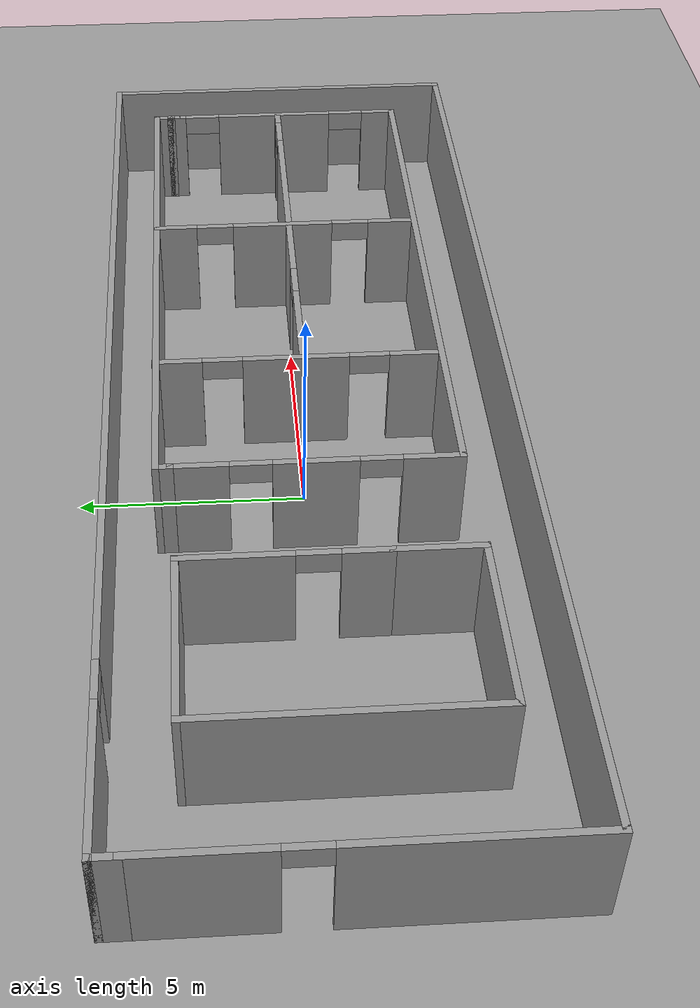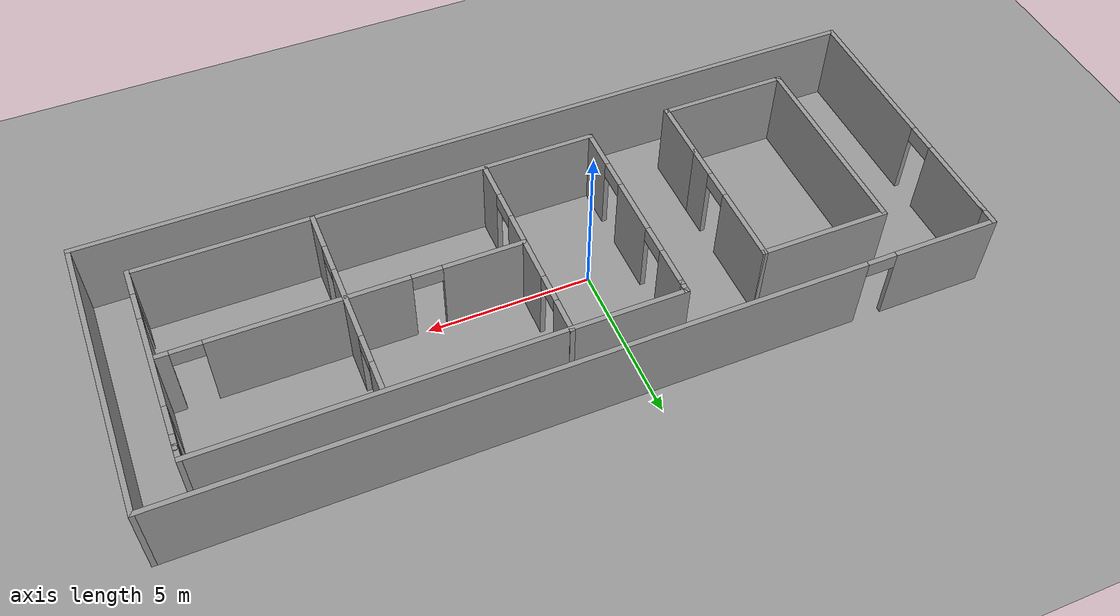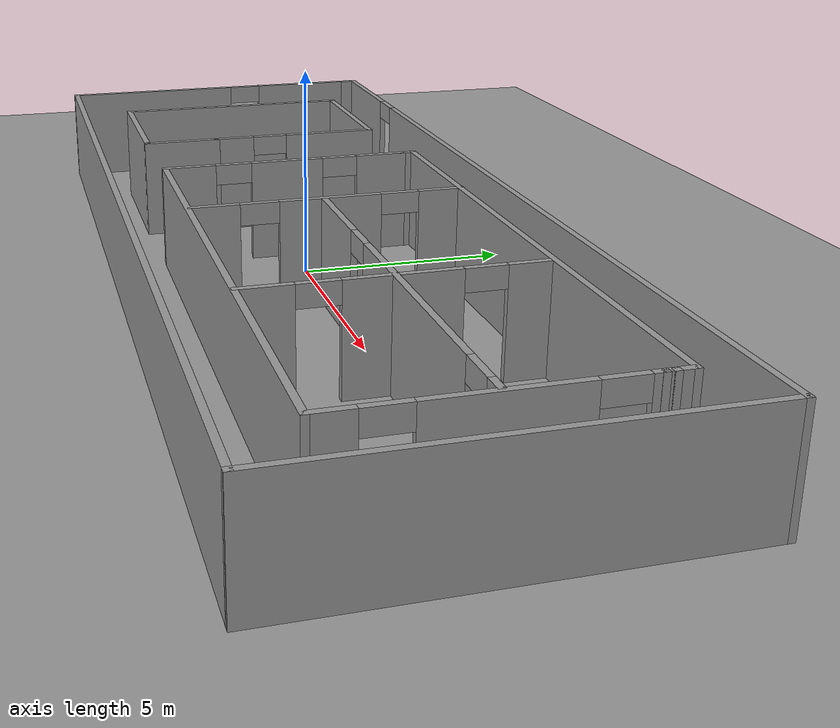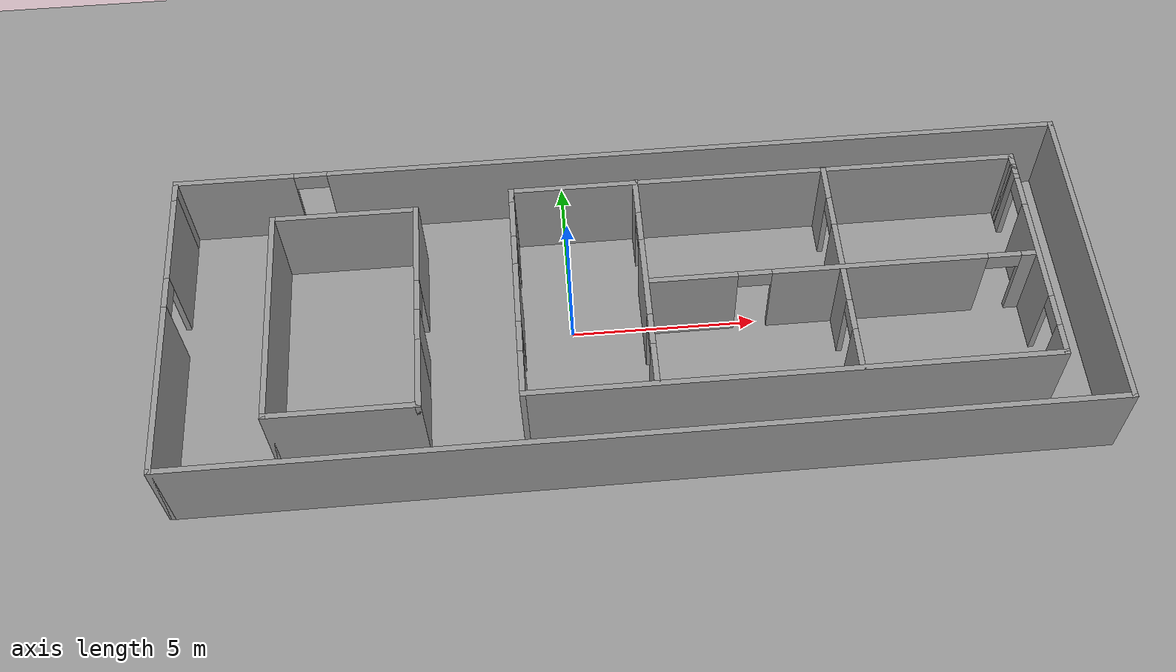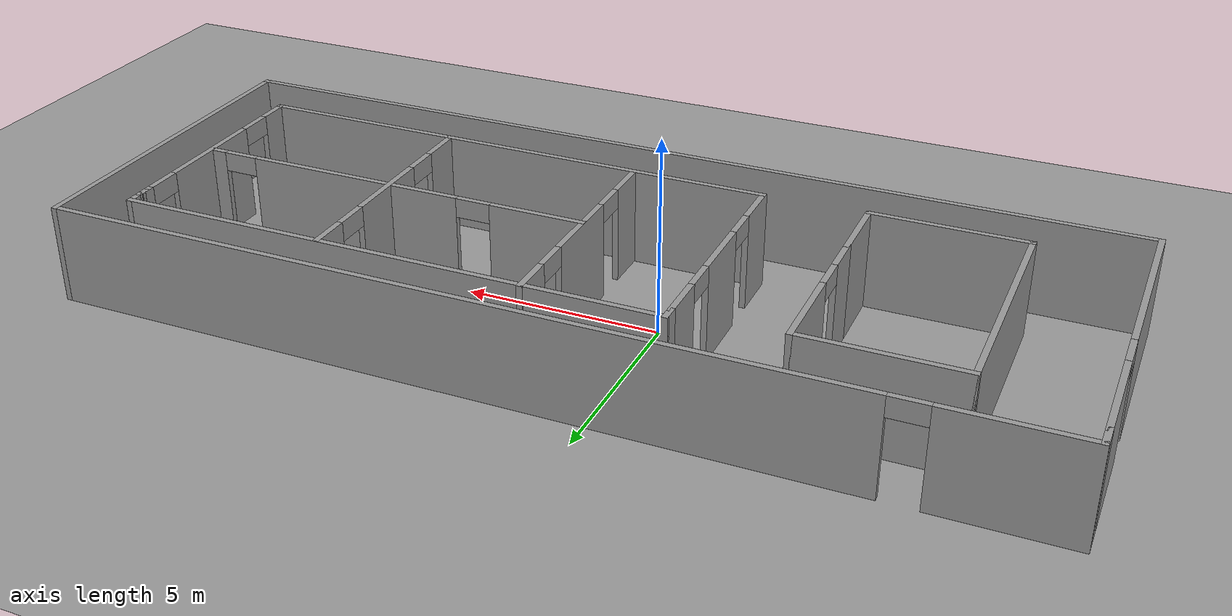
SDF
<sdf version="1.7">
 <world name="default">
  <light name="sun" type="directional">
   <pose>0 0 10 0 -0 0</pose>
   <diffuse>0.8 0.8 0.8 1</diffuse>
   <specular>0.2 0.2 0.2 1</specular>
   <attenuation>
    <range>1000</range>
    <constant>0.9</constant>
    <linear>0.01</linear>
    <quadratic>0.001</quadratic>
   </attenuation>
   <direction>0.5 0.1 -0.9</direction>
   <spot><inner_angle>0</inner_angle><outer_angle>0</outer_angle><falloff>0</falloff></spot>
  </light>
  <scene><ambient>0.4 0.4 0.4 1</ambient><background>0.7 0.7 0.7 1</background><shadows>1</shadows></scene>
  <physics name="default_physics" default="0" type="ode">
   <max_step_size>0.01</max_step_size>
   <real_time_factor>1</real_time_factor>
   <real_time_update_rate>100</real_time_update_rate>
  </physics>
  <model name="ground_plane_0">
   <static>1</static>
   <link name="link">
    <collision name="collision">
     <geometry><plane><normal>0 0 1</normal><size>100 100</size></plane></geometry>
     <surface><friction><ode><mu>100</mu><mu2>50</mu2></ode></friction></surface>
    </collision>
    <visual name="visual">
     <cast_shadows>0</cast_shadows>
     <geometry><plane><normal>0 0 1</normal><size>100 100</size></plane></geometry>
     <material>
      <script><uri>file://media/materials/scripts/gazebo.material</uri><name>Gazebo/Grey</name></script>
     </material>
    </visual>
    <velocity_decay><linear>0</linear><angular>0</angular></velocity_decay>
   </link>
   <pose>0.497681 0 0 0 -0 0</pose>
  </model>
  <gravity>0 0 -9.8</gravity>
  <magnetic_field>6e-06 2.3e-05 -4.2e-05</magnetic_field>
  <atmosphere type="adiabatic"/>
  <spherical_coordinates>
   <surface_model>EARTH_WGS84</surface_model>
   <latitude_deg>0</latitude_deg>
   <longitude_deg>0</longitude_deg>
   <elevation>0</elevation>
   <heading_deg>0</heading_deg>
  </spherical_coordinates>
  <model name="myCustomRoom">
   <pose>1.63945 -0.167842 0 0 -0 0</pose>
   <link name="Wall_0">
    <pose>-12.175 -0.25 0 0 0 -1.5708</pose>
    <visual name="Wall_0_Visual_0">
     <pose>-2.8875 0 1.25 0 -0 0</pose>
     <geometry><box><size>2.725 0.15 2.5</size></box></geometry>
     <material>
      <script><uri>file://media/materials/scripts/gazebo.material</uri><name>Gazebo/Grey</name></script>
      <ambient>1 1 1 1</ambient>
     </material>
    </visual>
    <collision name="Wall_0_Collision_0">
     <geometry><box><size>2.725 0.15 2.5</size></box></geometry>
     <pose>-2.8875 0 1.25 0 -0 0</pose>
    </collision>
    <visual name="Wall_0_Visual_1">
     <pose>1.8125 0 1.25 0 -0 0</pose>
     <geometry><box><size>4.875 0.15 2.5</size></box></geometry>
     <material>
      <script><uri>file://media/materials/scripts/gazebo.material</uri><name>Gazebo/Grey</name></script>
      <ambient>1 1 1 1</ambient>
     </material>
    </visual>
    <collision name="Wall_0_Collision_1">
     <geometry><box><size>4.875 0.15 2.5</size></box></geometry>
     <pose>1.8125 0 1.25 0 -0 0</pose>
    </collision>
    <visual name="Wall_0_Visual_2">
     <pose>-1.075 0 2.25 0 -0 0</pose>
     <geometry><box><size>0.9 0.15 0.5</size></box></geometry>
     <material>
      <script><uri>file://media/materials/scripts/gazebo.material</uri><name>Gazebo/Grey</name></script>
      <ambient>1 1 1 1</ambient>
     </material>
    </visual>
    <collision name="Wall_0_Collision_2">
     <geometry><box><size>0.9 0.15 0.5</size></box></geometry>
     <pose>-1.075 0 2.25 0 -0 0</pose>
    </collision>
   </link>
   <link name="Wall_1">
    <collision name="Wall_1_Collision">
     <geometry><box><size>24.5 0.15 2.5</size></box></geometry>
     <pose>0 0 1.25 0 -0 0</pose>
    </collision>
    <visual name="Wall_1_Visual">
     <pose>0 0 1.25 0 -0 0</pose>
     <geometry><box><size>24.5 0.15 2.5</size></box></geometry>
     <material>
      <script><uri>file://media/materials/scripts/gazebo.material</uri><name>Gazebo/Grey</name></script>
      <ambient>1 1 1 1</ambient>
     </material>
    </visual>
    <pose>0 -4.425 0 0 -0 0</pose>
   </link>
   <link name="Wall_10">
    <collision name="Wall_10_Collision">
     <geometry><box><size>4 0.15 2.5</size></box></geometry>
     <pose>0 0 1.25 0 -0 0</pose>
    </collision>
    <visual name="Wall_10_Visual">
     <pose>0 0 1.25 0 -0 0</pose>
     <geometry><box><size>4 0.15 2.5</size></box></geometry>
     <material>
      <script><uri>file://media/materials/scripts/gazebo.material</uri><name>Gazebo/Grey</name></script>
      <ambient>1 1 1 1</ambient>
     </material>
    </visual>
    <pose>-7.57 2.975 0 0 -0 0</pose>
   </link>
   <link name="Wall_11">
    <pose>-5.645 0.85 0 0 0 -1.5708</pose>
    <visual name="Wall_11_Visual_0">
     <pose>-0.9875 0 1.25 0 -0 0</pose>
     <geometry><box><size>2.425 0.15 2.5</size></box></geometry>
     <material>
      <script><uri>file://media/materials/scripts/gazebo.material</uri><name>Gazebo/Grey</name></script>
      <ambient>1 1 1 1</ambient>
     </material>
    </visual>
    <collision name="Wall_11_Collision_0">
     <geometry><box><size>2.425 0.15 2.5</size></box></geometry>
     <pose>-0.9875 0 1.25 0 -0 0</pose>
    </collision>
    <visual name="Wall_11_Visual_1">
     <pose>1.6625 0 1.25 0 -0 0</pose>
     <geometry><box><size>1.075 0.15 2.5</size></box></geometry>
     <material>
      <script><uri>file://media/materials/scripts/gazebo.material</uri><name>Gazebo/Grey</name></script>
      <ambient>1 1 1 1</ambient>
     </material>
    </visual>
    <collision name="Wall_11_Collision_1">
     <geometry><box><size>1.075 0.15 2.5</size></box></geometry>
     <pose>1.6625 0 1.25 0 -0 0</pose>
    </collision>
    <visual name="Wall_11_Visual_2">
     <pose>0.675 0 2.25 0 -0 0</pose>
     <geometry><box><size>0.9 0.15 0.5</size></box></geometry>
     <material>
      <script><uri>file://media/materials/scripts/gazebo.material</uri><name>Gazebo/Grey</name></script>
      <ambient>1 1 1 1</ambient>
     </material>
    </visual>
    <collision name="Wall_11_Collision_2">
     <geometry><box><size>0.9 0.15 0.5</size></box></geometry>
     <pose>0.675 0 2.25 0 -0 0</pose>
    </collision>
   </link>
   <link name="Wall_13">
    <pose>-3.04637 0.01465 0 0 0 -1.5708</pose>
    <visual name="Wall_13_Visual_0">
     <pose>-2.47479 0 1.25 0 -0 0</pose>
     <geometry><box><size>1.30041 0.15 2.5</size></box></geometry>
     <material>
      <script><uri>file://media/materials/scripts/gazebo.material</uri><name>Gazebo/Grey</name></script>
      <ambient>1 1 1 1</ambient>
     </material>
    </visual>
    <collision name="Wall_13_Collision_0">
     <geometry><box><size>1.30041 0.15 2.5</size></box></geometry>
     <pose>-2.47479 0 1.25 0 -0 0</pose>
    </collision>
    <visual name="Wall_13_Visual_1">
     <pose>-0.013529 0 1.25 0 -0 0</pose>
     <geometry><box><size>1.82212 0.15 2.5</size></box></geometry>
     <material>
      <script><uri>file://media/materials/scripts/gazebo.material</uri><name>Gazebo/Grey</name></script>
      <ambient>1 1 1 1</ambient>
     </material>
    </visual>
    <collision name="Wall_13_Collision_1">
     <geometry><box><size>1.82212 0.15 2.5</size></box></geometry>
     <pose>-0.013529 0 1.25 0 -0 0</pose>
    </collision>
    <visual name="Wall_13_Visual_2">
     <pose>2.46127 0 1.25 0 -0 0</pose>
     <geometry><box><size>1.32747 0.15 2.5</size></box></geometry>
     <material>
      <script><uri>file://media/materials/scripts/gazebo.material</uri><name>Gazebo/Grey</name></script>
      <ambient>1 1 1 1</ambient>
     </material>
    </visual>
    <collision name="Wall_13_Collision_2">
     <geometry><box><size>1.32747 0.15 2.5</size></box></geometry>
     <pose>2.46127 0 1.25 0 -0 0</pose>
    </collision>
    <visual name="Wall_13_Visual_3">
     <pose>-1.37459 0 2.25 0 -0 0</pose>
     <geometry><box><size>0.9 0.15 0.5</size></box></geometry>
     <material>
      <script><uri>file://media/materials/scripts/gazebo.material</uri><name>Gazebo/Grey</name></script>
      <ambient>1 1 1 1</ambient>
     </material>
    </visual>
    <collision name="Wall_13_Collision_3">
     <geometry><box><size>0.9 0.15 0.5</size></box></geometry>
     <pose>-1.37459 0 2.25 0 -0 0</pose>
    </collision>
    <visual name="Wall_13_Visual_4">
     <pose>1.34753 0 2.25 0 -0 0</pose>
     <geometry><box><size>0.9 0.15 0.5</size></box></geometry>
     <material>
      <script><uri>file://media/materials/scripts/gazebo.material</uri><name>Gazebo/Grey</name></script>
      <ambient>1 1 1 1</ambient>
     </material>
    </visual>
    <collision name="Wall_13_Collision_4">
     <geometry><box><size>0.9 0.15 0.5</size></box></geometry>
     <pose>1.34753 0 2.25 0 -0 0</pose>
    </collision>
   </link>
   <link name="Wall_14">
    <collision name="Wall_14_Collision">
     <geometry><box><size>14 0.15 2.5</size></box></geometry>
     <pose>0 0 1.25 0 -0 0</pose>
    </collision>
    <visual name="Wall_14_Visual">
     <pose>0 0 1.25 0 -0 0</pose>
     <geometry><box><size>14 0.15 2.5</size></box></geometry>
     <material>
      <script><uri>file://media/materials/scripts/gazebo.material</uri><name>Gazebo/Grey</name></script>
      <ambient>1 1 1 1</ambient>
     </material>
    </visual>
    <pose>3.87863 -3.03535 0 0 -0 0</pose>
   </link>
   <link name="Wall_15">
    <pose>10.8036 -0.11035 0 0 -0 1.5708</pose>
    <visual name="Wall_15_Visual_0">
     <pose>-2.55324 0 1.25 0 -0 0</pose>
     <geometry><box><size>0.893509 0.15 2.5</size></box></geometry>
     <material>
      <script><uri>file://media/materials/scripts/gazebo.material</uri><name>Gazebo/Grey</name></script>
      <ambient>1 1 1 1</ambient>
     </material>
    </visual>
    <collision name="Wall_15_Collision_0">
     <geometry><box><size>0.893509 0.15 2.5</size></box></geometry>
     <pose>-2.55324 0 1.25 0 -0 0</pose>
    </collision>
    <visual name="Wall_15_Visual_1">
     <pose>0.296332 0 1.25 0 -0 0</pose>
     <geometry><box><size>3.00565 0.15 2.5</size></box></geometry>
     <material>
      <script><uri>file://media/materials/scripts/gazebo.material</uri><name>Gazebo/Grey</name></script>
      <ambient>1 1 1 1</ambient>
     </material>
    </visual>
    <collision name="Wall_15_Collision_1">
     <geometry><box><size>3.00565 0.15 2.5</size></box></geometry>
     <pose>0.296332 0 1.25 0 -0 0</pose>
    </collision>
    <visual name="Wall_15_Visual_2">
     <pose>2.84958 0 1.25 0 -0 0</pose>
     <geometry><box><size>0.300844 0.15 2.5</size></box></geometry>
     <material>
      <script><uri>file://media/materials/scripts/gazebo.material</uri><name>Gazebo/Grey</name></script>
      <ambient>1 1 1 1</ambient>
     </material>
    </visual>
    <collision name="Wall_15_Collision_2">
     <geometry><box><size>0.300844 0.15 2.5</size></box></geometry>
     <pose>2.84958 0 1.25 0 -0 0</pose>
    </collision>
    <visual name="Wall_15_Visual_3">
     <pose>-1.65649 0 2.25 0 -0 0</pose>
     <geometry><box><size>0.9 0.15 0.5</size></box></geometry>
     <material>
      <script><uri>file://media/materials/scripts/gazebo.material</uri><name>Gazebo/Grey</name></script>
      <ambient>1 1 1 1</ambient>
     </material>
    </visual>
    <collision name="Wall_15_Collision_3">
     <geometry><box><size>0.9 0.15 0.5</size></box></geometry>
     <pose>-1.65649 0 2.25 0 -0 0</pose>
    </collision>
    <visual name="Wall_15_Visual_4">
     <pose>2.24916 0 2.25 0 -0 0</pose>
     <geometry><box><size>0.9 0.15 0.5</size></box></geometry>
     <material>
      <script><uri>file://media/materials/scripts/gazebo.material</uri><name>Gazebo/Grey</name></script>
      <ambient>1 1 1 1</ambient>
     </material>
    </visual>
    <collision name="Wall_15_Collision_4">
     <geometry><box><size>0.9 0.15 0.5</size></box></geometry>
     <pose>2.24916 0 2.25 0 -0 0</pose>
    </collision>
   </link>
   <link name="Wall_16">
    <collision name="Wall_16_Collision">
     <geometry><box><size>0.15 0.15 2.5</size></box></geometry>
     <pose>0 0 1.25 0 -0 0</pose>
    </collision>
    <visual name="Wall_16_Visual">
     <pose>0 0 1.25 0 -0 0</pose>
     <geometry><box><size>0.15 0.15 2.5</size></box></geometry>
     <material>
      <script><uri>file://media/materials/scripts/gazebo.material</uri><name>Gazebo/Grey</name></script>
      <ambient>1 1 1 1</ambient>
     </material>
    </visual>
    <pose>10.8036 2.81465 0 0 -0 0</pose>
   </link>
   <link name="Wall_17">
    <collision name="Wall_17_Collision">
     <geometry><box><size>0.25 0.15 2.5</size></box></geometry>
     <pose>0 0 1.25 0 -0 0</pose>
    </collision>
    <visual name="Wall_17_Visual">
     <pose>0 0 1.25 0 -0 0</pose>
     <geometry><box><size>0.25 0.15 2.5</size></box></geometry>
     <material>
      <script><uri>file://media/materials/scripts/gazebo.material</uri><name>Gazebo/Grey</name></script>
      <ambient>1 1 1 1</ambient>
     </material>
    </visual>
    <pose>10.8036 2.86465 0 0 -0 1.5708</pose>
   </link>
   <link name="Wall_18">
    <collision name="Wall_18_Collision">
     <geometry><box><size>0.25 0.15 2.5</size></box></geometry>
     <pose>0 0 1.25 0 -0 0</pose>
    </collision>
    <visual name="Wall_18_Visual">
     <pose>0 0 1.25 0 -0 0</pose>
     <geometry><box><size>0.25 0.15 2.5</size></box></geometry>
     <material>
      <script><uri>file://media/materials/scripts/gazebo.material</uri><name>Gazebo/Grey</name></script>
      <ambient>1 1 1 1</ambient>
     </material>
    </visual>
    <pose>10.8036 2.96465 0 0 -0 1.5708</pose>
   </link>
   <link name="Wall_19">
    <collision name="Wall_19_Collision">
     <geometry><box><size>0.15 0.15 2.5</size></box></geometry>
     <pose>0 0 1.25 0 -0 0</pose>
    </collision>
    <visual name="Wall_19_Visual">
     <pose>0 0 1.25 0 -0 0</pose>
     <geometry><box><size>0.15 0.15 2.5</size></box></geometry>
     <material>
      <script><uri>file://media/materials/scripts/gazebo.material</uri><name>Gazebo/Grey</name></script>
      <ambient>1 1 1 1</ambient>
     </material>
    </visual>
    <pose>10.8036 3.01465 0 0 -0 0</pose>
   </link>
   <link name="Wall_2">
    <collision name="Wall_2_Collision">
     <geometry><box><size>9 0.15 2.5</size></box></geometry>
     <pose>0 0 1.25 0 -0 0</pose>
    </collision>
    <visual name="Wall_2_Visual">
     <pose>0 0 1.25 0 -0 0</pose>
     <geometry><box><size>9 0.15 2.5</size></box></geometry>
     <material>
      <script><uri>file://media/materials/scripts/gazebo.material</uri><name>Gazebo/Grey</name></script>
      <ambient>1 1 1 1</ambient>
     </material>
    </visual>
    <pose>12.175 0 0 0 -0 1.5708</pose>
   </link>
   <link name="Wall_20">
    <collision name="Wall_20_Collision">
     <geometry><box><size>0.15 0.15 2.5</size></box></geometry>
     <pose>0 0 1.25 0 -0 0</pose>
    </collision>
    <visual name="Wall_20_Visual">
     <pose>0 0 1.25 0 -0 0</pose>
     <geometry><box><size>0.15 0.15 2.5</size></box></geometry>
     <material>
      <script><uri>file://media/materials/scripts/gazebo.material</uri><name>Gazebo/Grey</name></script>
      <ambient>1 1 1 1</ambient>
     </material>
    </visual>
    <pose>10.8036 3.01465 0 0 -0 0</pose>
   </link>
   <link name="Wall_21">
    <collision name="Wall_21_Collision">
     <geometry><box><size>0.15 0.15 2.5</size></box></geometry>
     <pose>0 0 1.25 0 -0 0</pose>
    </collision>
    <visual name="Wall_21_Visual">
     <pose>0 0 1.25 0 -0 0</pose>
     <geometry><box><size>0.15 0.15 2.5</size></box></geometry>
     <material>
      <script><uri>file://media/materials/scripts/gazebo.material</uri><name>Gazebo/Grey</name></script>
      <ambient>1 1 1 1</ambient>
     </material>
    </visual>
    <pose>10.8036 3.01465 0 0 -0 0</pose>
   </link>
   <link name="Wall_22">
    <collision name="Wall_22_Collision">
     <geometry><box><size>0.5 0.15 2.5</size></box></geometry>
     <pose>0 0 1.25 0 -0 0</pose>
    </collision>
    <visual name="Wall_22_Visual">
     <pose>0 0 1.25 0 -0 0</pose>
     <geometry><box><size>0.5 0.15 2.5</size></box></geometry>
     <material>
      <script><uri>file://media/materials/scripts/gazebo.material</uri><name>Gazebo/Grey</name></script>
      <ambient>1 1 1 1</ambient>
     </material>
    </visual>
    <pose>10.8036 3.18965 0 0 -0 1.5708</pose>
   </link>
   <link name="Wall_23">
    <collision name="Wall_23_Collision">
     <geometry><box><size>14 0.15 2.5</size></box></geometry>
     <pose>0 0 1.25 0 -0 0</pose>
    </collision>
    <visual name="Wall_23_Visual">
     <pose>0 0 1.25 0 -0 0</pose>
     <geometry><box><size>14 0.15 2.5</size></box></geometry>
     <material>
      <script><uri>file://media/materials/scripts/gazebo.material</uri><name>Gazebo/Grey</name></script>
      <ambient>1 1 1 1</ambient>
     </material>
    </visual>
    <pose>3.87863 3.36465 0 0 -0 3.14159</pose>
   </link>
   <link name="Wall_24">
    <collision name="Wall_24_Collision">
     <geometry><box><size>0.45 0.15 2.5</size></box></geometry>
     <pose>0 0 1.25 0 -0 0</pose>
    </collision>
    <visual name="Wall_24_Visual">
     <pose>0 0 1.25 0 -0 0</pose>
     <geometry><box><size>0.45 0.15 2.5</size></box></geometry>
     <material>
      <script><uri>file://media/materials/scripts/gazebo.material</uri><name>Gazebo/Grey</name></script>
      <ambient>1 1 1 1</ambient>
     </material>
    </visual>
    <pose>-3.04637 3.21465 0 0 0 -1.5708</pose>
   </link>
   <link name="Wall_26">
    <pose>0.342783 0.206511 0 0 0 -1.5708</pose>
    <visual name="Wall_26_Visual_0">
     <pose>-2.68793 0 1.25 0 -0 0</pose>
     <geometry><box><size>1.12414 0.15 2.5</size></box></geometry>
     <material>
      <script><uri>file://media/materials/scripts/gazebo.material</uri><name>Gazebo/Grey</name></script>
      <ambient>1 1 1 1</ambient>
     </material>
    </visual>
    <collision name="Wall_26_Collision_0">
     <geometry><box><size>1.12414 0.15 2.5</size></box></geometry>
     <pose>-2.68793 0 1.25 0 -0 0</pose>
    </collision>
    <visual name="Wall_26_Visual_1">
     <pose>-0.028785 0 1.25 0 -0 0</pose>
     <geometry><box><size>2.39416 0.15 2.5</size></box></geometry>
     <material>
      <script><uri>file://media/materials/scripts/gazebo.material</uri><name>Gazebo/Grey</name></script>
      <ambient>1 1 1 1</ambient>
     </material>
    </visual>
    <collision name="Wall_26_Collision_1">
     <geometry><box><size>2.39416 0.15 2.5</size></box></geometry>
     <pose>-0.028785 0 1.25 0 -0 0</pose>
    </collision>
    <visual name="Wall_26_Visual_2">
     <pose>2.65915 0 1.25 0 -0 0</pose>
     <geometry><box><size>1.18171 0.15 2.5</size></box></geometry>
     <material>
      <script><uri>file://media/materials/scripts/gazebo.material</uri><name>Gazebo/Grey</name></script>
      <ambient>1 1 1 1</ambient>
     </material>
    </visual>
    <collision name="Wall_26_Collision_2">
     <geometry><box><size>1.18171 0.15 2.5</size></box></geometry>
     <pose>2.65915 0 1.25 0 -0 0</pose>
    </collision>
    <visual name="Wall_26_Visual_3">
     <pose>-1.67586 0 2.25 0 -0 0</pose>
     <geometry><box><size>0.9 0.15 0.5</size></box></geometry>
     <material>
      <script><uri>file://media/materials/scripts/gazebo.material</uri><name>Gazebo/Grey</name></script>
      <ambient>1 1 1 1</ambient>
     </material>
    </visual>
    <collision name="Wall_26_Collision_3">
     <geometry><box><size>0.9 0.15 0.5</size></box></geometry>
     <pose>-1.67586 0 2.25 0 -0 0</pose>
    </collision>
    <visual name="Wall_26_Visual_4">
     <pose>1.61829 0 2.25 0 -0 0</pose>
     <geometry><box><size>0.9 0.15 0.5</size></box></geometry>
     <material>
      <script><uri>file://media/materials/scripts/gazebo.material</uri><name>Gazebo/Grey</name></script>
      <ambient>1 1 1 1</ambient>
     </material>
    </visual>
    <collision name="Wall_26_Collision_4">
     <geometry><box><size>0.9 0.15 0.5</size></box></geometry>
     <pose>1.61829 0 2.25 0 -0 0</pose>
    </collision>
   </link>
   <link name="Wall_28">
    <pose>5.55031 0.16706 0 0 0 -1.5708</pose>
    <visual name="Wall_28_Visual_0">
     <pose>-2.72738 0 1.25 0 -0 0</pose>
     <geometry><box><size>1.04523 0.15 2.5</size></box></geometry>
     <material>
      <script><uri>file://media/materials/scripts/gazebo.material</uri><name>Gazebo/Grey</name></script>
      <ambient>1 1 1 1</ambient>
     </material>
    </visual>
    <collision name="Wall_28_Collision_0">
     <geometry><box><size>1.04523 0.15 2.5</size></box></geometry>
     <pose>-2.72738 0 1.25 0 -0 0</pose>
    </collision>
    <visual name="Wall_28_Visual_1">
     <pose>-0.078099 0 1.25 0 -0 0</pose>
     <geometry><box><size>2.45333 0.15 2.5</size></box></geometry>
     <material>
      <script><uri>file://media/materials/scripts/gazebo.material</uri><name>Gazebo/Grey</name></script>
      <ambient>1 1 1 1</ambient>
     </material>
    </visual>
    <collision name="Wall_28_Collision_1">
     <geometry><box><size>2.45333 0.15 2.5</size></box></geometry>
     <pose>-0.078099 0 1.25 0 -0 0</pose>
    </collision>
    <visual name="Wall_28_Visual_2">
     <pose>2.64928 0 1.25 0 -0 0</pose>
     <geometry><box><size>1.20143 0.15 2.5</size></box></geometry>
     <material>
      <script><uri>file://media/materials/scripts/gazebo.material</uri><name>Gazebo/Grey</name></script>
      <ambient>1 1 1 1</ambient>
     </material>
    </visual>
    <collision name="Wall_28_Collision_2">
     <geometry><box><size>1.20143 0.15 2.5</size></box></geometry>
     <pose>2.64928 0 1.25 0 -0 0</pose>
    </collision>
    <visual name="Wall_28_Visual_3">
     <pose>-1.75476 0 2.25 0 -0 0</pose>
     <geometry><box><size>0.9 0.15 0.5</size></box></geometry>
     <material>
      <script><uri>file://media/materials/scripts/gazebo.material</uri><name>Gazebo/Grey</name></script>
      <ambient>1 1 1 1</ambient>
     </material>
    </visual>
    <collision name="Wall_28_Collision_3">
     <geometry><box><size>0.9 0.15 0.5</size></box></geometry>
     <pose>-1.75476 0 2.25 0 -0 0</pose>
    </collision>
    <visual name="Wall_28_Visual_4">
     <pose>1.59857 0 2.25 0 -0 0</pose>
     <geometry><box><size>0.9 0.15 0.5</size></box></geometry>
     <material>
      <script><uri>file://media/materials/scripts/gazebo.material</uri><name>Gazebo/Grey</name></script>
      <ambient>1 1 1 1</ambient>
     </material>
    </visual>
    <collision name="Wall_28_Collision_4">
     <geometry><box><size>0.9 0.15 0.5</size></box></geometry>
     <pose>1.59857 0 2.25 0 -0 0</pose>
    </collision>
   </link>
   <link name="Wall_3">
    <pose>0 4.425 0 0 -0 3.14159</pose>
    <visual name="Wall_3_Visual_0">
     <pose>-2.0925 0 1.25 0 -0 0</pose>
     <geometry><box><size>20.315 0.15 2.5</size></box></geometry>
     <material>
      <script><uri>file://media/materials/scripts/gazebo.material</uri><name>Gazebo/Grey</name></script>
      <ambient>1 1 1 1</ambient>
     </material>
    </visual>
    <collision name="Wall_3_Collision_0">
     <geometry><box><size>20.315 0.15 2.5</size></box></geometry>
     <pose>-2.0925 0 1.25 0 -0 0</pose>
    </collision>
    <visual name="Wall_3_Visual_1">
     <pose>10.6075 0 1.25 0 -0 0</pose>
     <geometry><box><size>3.285 0.15 2.5</size></box></geometry>
     <material>
      <script><uri>file://media/materials/scripts/gazebo.material</uri><name>Gazebo/Grey</name></script>
      <ambient>1 1 1 1</ambient>
     </material>
    </visual>
    <collision name="Wall_3_Collision_1">
     <geometry><box><size>3.285 0.15 2.5</size></box></geometry>
     <pose>10.6075 0 1.25 0 -0 0</pose>
    </collision>
    <visual name="Wall_3_Visual_2">
     <pose>8.515 0 2.25 0 -0 0</pose>
     <geometry><box><size>0.9 0.15 0.5</size></box></geometry>
     <material>
      <script><uri>file://media/materials/scripts/gazebo.material</uri><name>Gazebo/Grey</name></script>
      <ambient>1 1 1 1</ambient>
     </material>
    </visual>
    <collision name="Wall_3_Collision_2">
     <geometry><box><size>0.9 0.15 0.5</size></box></geometry>
     <pose>8.515 0 2.25 0 -0 0</pose>
    </collision>
   </link>
   <link name="Wall_30">
    <pose>5.53751 0.087355 0 0 -0 0</pose>
    <visual name="Wall_30_Visual_0">
     <pose>-4.0074 0 1.25 0 -0 0</pose>
     <geometry><box><size>2.4852 0.15 2.5</size></box></geometry>
     <material>
      <script><uri>file://media/materials/scripts/gazebo.material</uri><name>Gazebo/Grey</name></script>
      <ambient>1 1 1 1</ambient>
     </material>
    </visual>
    <collision name="Wall_30_Collision_0">
     <geometry><box><size>2.4852 0.15 2.5</size></box></geometry>
     <pose>-4.0074 0 1.25 0 -0 0</pose>
    </collision>
    <visual name="Wall_30_Visual_1">
     <pose>1.0188 0 1.25 0 -0 0</pose>
     <geometry><box><size>5.76722 0.15 2.5</size></box></geometry>
     <material>
      <script><uri>file://media/materials/scripts/gazebo.material</uri><name>Gazebo/Grey</name></script>
      <ambient>1 1 1 1</ambient>
     </material>
    </visual>
    <collision name="Wall_30_Collision_1">
     <geometry><box><size>5.76722 0.15 2.5</size></box></geometry>
     <pose>1.0188 0 1.25 0 -0 0</pose>
    </collision>
    <visual name="Wall_30_Visual_2">
     <pose>5.02621 0 1.25 0 -0 0</pose>
     <geometry><box><size>0.44759 0.15 2.5</size></box></geometry>
     <material>
      <script><uri>file://media/materials/scripts/gazebo.material</uri><name>Gazebo/Grey</name></script>
      <ambient>1 1 1 1</ambient>
     </material>
    </visual>
    <collision name="Wall_30_Collision_2">
     <geometry><box><size>0.44759 0.15 2.5</size></box></geometry>
     <pose>5.02621 0 1.25 0 -0 0</pose>
    </collision>
    <visual name="Wall_30_Visual_3">
     <pose>-2.3148 0 2.25 0 -0 0</pose>
     <geometry><box><size>0.9 0.15 0.5</size></box></geometry>
     <material>
      <script><uri>file://media/materials/scripts/gazebo.material</uri><name>Gazebo/Grey</name></script>
      <ambient>1 1 1 1</ambient>
     </material>
    </visual>
    <collision name="Wall_30_Collision_3">
     <geometry><box><size>0.9 0.15 0.5</size></box></geometry>
     <pose>-2.3148 0 2.25 0 -0 0</pose>
    </collision>
    <visual name="Wall_30_Visual_4">
     <pose>4.35241 0 2.25 0 -0 0</pose>
     <geometry><box><size>0.9 0.15 0.5</size></box></geometry>
     <material>
      <script><uri>file://media/materials/scripts/gazebo.material</uri><name>Gazebo/Grey</name></script>
      <ambient>1 1 1 1</ambient>
     </material>
    </visual>
    <collision name="Wall_30_Collision_4">
     <geometry><box><size>0.9 0.15 0.5</size></box></geometry>
     <pose>4.35241 0 2.25 0 -0 0</pose>
    </collision>
   </link>
   <link name="Wall_4">
    <collision name="Wall_4_Collision">
     <geometry><box><size>0.65 0.15 2.5</size></box></geometry>
     <pose>0 0 1.25 0 -0 0</pose>
    </collision>
    <visual name="Wall_4_Visual">
     <pose>0 0 1.25 0 -0 0</pose>
     <geometry><box><size>0.65 0.15 2.5</size></box></geometry>
     <material>
      <script><uri>file://media/materials/scripts/gazebo.material</uri><name>Gazebo/Grey</name></script>
      <ambient>1 1 1 1</ambient>
     </material>
    </visual>
    <pose>-12.175 4.175 0 0 0 -1.5708</pose>
   </link>
   <link name="Wall_6">
    <collision name="Wall_6_Collision">
     <geometry><box><size>6.25 0.15 2.5</size></box></geometry>
     <pose>0 0 1.25 0 -0 0</pose>
    </collision>
    <visual name="Wall_6_Visual">
     <pose>0 0 1.25 0 -0 0</pose>
     <geometry><box><size>6.25 0.15 2.5</size></box></geometry>
     <material>
      <script><uri>file://media/materials/scripts/gazebo.material</uri><name>Gazebo/Grey</name></script>
      <ambient>1 1 1 1</ambient>
     </material>
    </visual>
    <pose>-9.495 -0.075 0 0 0 -1.5708</pose>
   </link>
   <link name="Wall_7">
    <collision name="Wall_7_Collision">
     <geometry><box><size>4 0.15 2.5</size></box></geometry>
     <pose>0 0 1.25 0 -0 0</pose>
    </collision>
    <visual name="Wall_7_Visual">
     <pose>0 0 1.25 0 -0 0</pose>
     <geometry><box><size>4 0.15 2.5</size></box></geometry>
     <material>
      <script><uri>file://media/materials/scripts/gazebo.material</uri><name>Gazebo/Grey</name></script>
      <ambient>1 1 1 1</ambient>
     </material>
    </visual>
    <pose>-7.57 -3.125 0 0 -0 0</pose>
   </link>
   <link name="Wall_8">
    <collision name="Wall_8_Collision">
     <geometry><box><size>2 0.15 2.5</size></box></geometry>
     <pose>0 0 1.25 0 -0 0</pose>
    </collision>
    <visual name="Wall_8_Visual">
     <pose>0 0 1.25 0 -0 0</pose>
     <geometry><box><size>2 0.15 2.5</size></box></geometry>
     <material>
      <script><uri>file://media/materials/scripts/gazebo.material</uri><name>Gazebo/Grey</name></script>
      <ambient>1 1 1 1</ambient>
     </material>
    </visual>
    <pose>-5.645 -2.2 0 0 -0 1.5708</pose>
   </link>
   <static>1</static>
  </model>
 </world>
</sdf>
